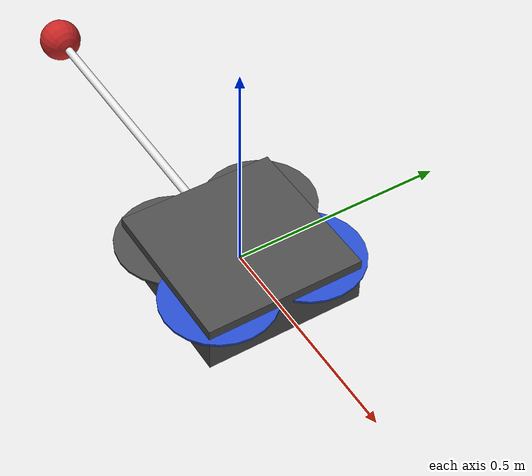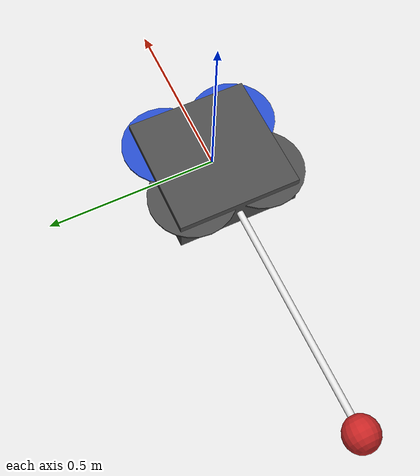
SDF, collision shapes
<?xml version='1.0'?>
<sdf version='1.6'>
  <enable_lockstep>false</enable_lockstep>
  <model name='px4vision_pendulum'>
  <static>false</static>
  <include>
    <uri>model://px4vision_ancl</uri>
  </include>

  <link name='pendulum'>
    <pose>-0.425 0 0 0 1.57 0</pose>
    <inertial>
      <mass>0.01</mass>
      <inertia>
        <ixx>0.00060208</ixx>
        <ixy>0</ixy>
        <ixz>0</ixz>
        <iyy>0.00060208</iyy>
        <iyz>0</iyz>
        <izz>0.000000005</izz>
      </inertia>
    </inertial>
    <collision name='pendulun_collision'>
      <geometry>
        <cylinder>
          <radius>0.01</radius>
          <length>0.85</length>
        </cylinder>
      </geometry>
      <surface>
        <contact>
          <ode/>
        </contact>
        <friction>
          <ode/>
        </friction>
      </surface>
    </collision>
    <visual name='pendulum_visual'>
      <geometry>
        <cylinder>
          <radius>0.001</radius>
          <length>0.85</length>
        </cylinder>
      </geometry>
      <material>
        <script>
          <name>Gazebo/White</name>
          <uri>file://media/materials/scripts/gazebo.material</uri>
        </script>
      </material>
    </visual>
    <gravity>1</gravity>

  </link>

  <link name='load'>
    <pose>-0.85 0 0 0 1.57 0</pose>
    <inertial>
      <mass>0.25</mass>
      <inertia>
        <ixx>0.00025</ixx>
        <ixy>0</ixy>
        <ixz>0</ixz>
        <iyy>0.00025</iyy>
        <iyz>0</iyz>
        <izz>0.00025</izz>
      </inertia>
    </inertial>
    <collision name='load_collision'>
      <geometry>
        <sphere>
          <radius>0.05 0.05 0.05</radius>
        </sphere>
      </geometry>
      <surface>
        <contact>
          <ode/>
        </contact>
        <friction>
          <ode/>
        </friction>
      </surface>
    </collision>
    <visual name='load_visual'>
      <geometry>
        <sphere>
          <radius>0.05 0.05 0.05</radius>
        </sphere>
      </geometry>
      <material>
        <script>
          <name>Gazebo/Red</name>
          <uri>file://media/materials/scripts/gazebo.material</uri>
        </script>
      </material>
    </visual>
    <gravity>1</gravity>
  </link>

  <joint name='load_joint' type='universal'>
    <pose>0 0 0.0 0 0 0</pose>
    <child>load</child>
    <parent>pendulum</parent>
    <axis>
      <xyz>0 0 1</xyz>
      <dynamics>
        <friction>10</friction>
      </dynamics>
    </axis>

    <axis2>
      <xyz>1 1 0</xyz>
      <dynamics>
        <friction>100</friction>
      </dynamics>
    </axis2>
  </joint>

  <joint name='pendulum_joint' type='universal'>
    <pose>0 0 0.425 0 0 0</pose>
    <child>pendulum</child>
    <parent>px4vision_ancl::base_link</parent>
  </joint>

  </model>
</sdf>

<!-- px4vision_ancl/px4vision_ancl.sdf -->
<sdf version='1.6'>
  <model name='px4vision_ancl'>
    <link name='base_link'>
      <pose>0 0 0 0 -0 0</pose>
      <inertial>
        <pose>0 0 0 0 -0 0</pose>
        <mass>1.5</mass>
        <inertia>
          <ixx>0.029125</ixx>
          <ixy>0</ixy>
          <ixz>0</ixz>
          <iyy>0.029125</iyy>
          <iyz>0</iyz>
          <izz>0.055225</izz>
        </inertia>
      </inertial>
      <collision name='base_link_inertia_collision'>
        <pose>0 0 0 0 -0 0</pose>
        <geometry>
          <box>
            <size>0.365 0.365 0.11</size>
          </box>
        </geometry>
        <surface>
          <contact>
            <ode>
              <min_depth>0.001</min_depth>
              <max_vel>0</max_vel>
            </ode>
          </contact>
          <friction>
            <ode/>
          </friction>
        </surface>
      </collision>
      <visual name='base_link_inertia_visual'>
        <pose>0 0 0 1.5707 0 -0.01</pose>
        <geometry>
          <mesh>
            <scale>0.001 0.001 0.001</scale>
            <uri>model://px4vision/meshes/body.dae</uri>
          </mesh>
        </geometry>
        <material>
          <script>
            <name>Gazebo/DarkGrey</name>
            <uri>file://media/materials/scripts/gazebo.material</uri>
          </script>
        </material>
      </visual>
      <gravity>1</gravity>
      <velocity_decay/>
    </link>
    <link name='/imu_link'>
      <pose>0 0 0 0 -0 0</pose>
      <inertial>
        <pose>0 0 0 0 -0 0</pose>
        <mass>0.015</mass>
        <inertia>
          <ixx>1e-05</ixx>
          <ixy>0</ixy>
          <ixz>0</ixz>
          <iyy>1e-05</iyy>
          <iyz>0</iyz>
          <izz>1e-05</izz>
        </inertia>
      </inertial>
    </link>
    <joint name='/imu_joint' type='revolute'>
      <child>/imu_link</child>
      <parent>base_link</parent>
      <axis>
        <xyz>1 0 0</xyz>
        <limit>
          <lower>0</lower>
          <upper>0</upper>
          <effort>0</effort>
          <velocity>0</velocity>
        </limit>
        <dynamics>
          <spring_reference>0</spring_reference>
          <spring_stiffness>0</spring_stiffness>
        </dynamics>
        <use_parent_model_frame>1</use_parent_model_frame>
      </axis>
    </joint>
    <link name='rotor_0'>
      <pose>0.0935 -0.107 0.03 0 -0 0</pose>
      <inertial>
        <pose>0 0 0 0 -0 0</pose>
        <mass>0.005</mass>
        <inertia>
          <ixx>9.75e-07</ixx>
          <ixy>0</ixy>
          <ixz>0</ixz>
          <iyy>0.000273104</iyy>
          <iyz>0</iyz>
          <izz>0.000274004</izz>
        </inertia>
      </inertial>
      <collision name='rotor_0_collision'>
        <pose>0 0 0 0 -0 0</pose>
        <geometry>
          <cylinder>
            <length>0.005</length>
            <radius>0.128</radius>
          </cylinder>
        </geometry>
        <surface>
          <contact>
            <ode/>
          </contact>
          <friction>
            <ode/>
          </friction>
        </surface>
      </collision>
      <visual name='rotor_0_visual'>
        <pose>0 0 0 0 -0 0</pose>
        <geometry>
          <mesh>
            <scale>0.6 0.6 0.6</scale>
            <uri>model://iris/meshes/iris_prop_ccw.dae</uri>
          </mesh>
        </geometry>
        <material>
          <script>
            <name>Gazebo/Blue</name>
            <uri>file://media/materials/scripts/gazebo.material</uri>
          </script>
        </material>
      </visual>
      <gravity>1</gravity>
      <velocity_decay/>
    </link>
    <joint name='rotor_0_joint' type='revolute'>
      <child>rotor_0</child>
      <parent>base_link</parent>
      <axis>
        <xyz>0 0 1</xyz>
        <limit>
          <lower>-1e+16</lower>
          <upper>1e+16</upper>
        </limit>
        <dynamics>
          <spring_reference>0</spring_reference>
          <spring_stiffness>0</spring_stiffness>
        </dynamics>
        <use_parent_model_frame>1</use_parent_model_frame>
      </axis>
    </joint>
    <link name='rotor_1'>
      <pose>-0.0935 0.107 0.03 0 -0 0</pose>
      <inertial>
        <pose>0 0 0 0 -0 0</pose>
        <mass>0.005</mass>
        <inertia>
          <ixx>9.75e-07</ixx>
          <ixy>0</ixy>
          <ixz>0</ixz>
          <iyy>0.000273104</iyy>
          <iyz>0</iyz>
          <izz>0.000274004</izz>
        </inertia>
      </inertial>
      <collision name='rotor_1_collision'>
        <pose>0 0 0 0 -0 0</pose>
        <geometry>
          <cylinder>
            <length>0.005</length>
            <radius>0.128</radius>
          </cylinder>
        </geometry>
        <surface>
          <contact>
            <ode/>
          </contact>
          <friction>
            <ode/>
          </friction>
        </surface>
      </collision>
      <visual name='rotor_1_visual'>
        <pose>0 0 0 0 -0 0</pose>
        <geometry>
          <mesh>
            <scale>0.6 0.6 0.6</scale>
            <uri>model://iris/meshes/iris_prop_ccw.dae</uri>
          </mesh>
        </geometry>
        <material>
          <script>
            <name>Gazebo/DarkGrey</name>
            <uri>file://media/materials/scripts/gazebo.material</uri>
          </script>
        </material>
      </visual>
      <gravity>1</gravity>
      <velocity_decay/>
    </link>
    <joint name='rotor_1_joint' type='revolute'>
      <child>rotor_1</child>
      <parent>base_link</parent>
      <axis>
        <xyz>0 0 1</xyz>
        <limit>
          <lower>-1e+16</lower>
          <upper>1e+16</upper>
        </limit>
        <dynamics>
          <spring_reference>0</spring_reference>
          <spring_stiffness>0</spring_stiffness>
        </dynamics>
        <use_parent_model_frame>1</use_parent_model_frame>
      </axis>
    </joint>
    <link name='rotor_2'>
      <pose>0.0935 0.107 0.03 0 -0 0</pose>
      <inertial>
        <pose>0 0 0 0 -0 0</pose>
        <mass>0.005</mass>
        <inertia>
          <ixx>9.75e-07</ixx>
          <ixy>0</ixy>
          <ixz>0</ixz>
          <iyy>0.000273104</iyy>
          <iyz>0</iyz>
          <izz>0.000274004</izz>
        </inertia>
      </inertial>
      <collision name='rotor_2_collision'>
        <pose>0 0 0 0 -0 0</pose>
        <geometry>
          <cylinder>
            <length>0.005</length>
            <radius>0.128</radius>
          </cylinder>
        </geometry>
        <surface>
          <contact>
            <ode/>
          </contact>
          <friction>
            <ode/>
          </friction>
        </surface>
      </collision>
      <visual name='rotor_2_visual'>
        <pose>0 0 0 0 -0 0</pose>
        <geometry>
          <mesh>
            <scale>0.6 0.6 0.6</scale>
            <uri>model://iris/meshes/iris_prop_cw.dae</uri>
          </mesh>
        </geometry>
        <material>
          <script>
            <name>Gazebo/Blue</name>
            <uri>file://media/materials/scripts/gazebo.material</uri>
          </script>
        </material>
      </visual>
      <gravity>1</gravity>
      <velocity_decay/>
    </link>
    <joint name='rotor_2_joint' type='revolute'>
      <child>rotor_2</child>
      <parent>base_link</parent>
      <axis>
        <xyz>0 0 1</xyz>
        <limit>
          <lower>-1e+16</lower>
          <upper>1e+16</upper>
        </limit>
        <dynamics>
          <spring_reference>0</spring_reference>
          <spring_stiffness>0</spring_stiffness>
        </dynamics>
        <use_parent_model_frame>1</use_parent_model_frame>
      </axis>
    </joint>
    <link name='rotor_3'>
      <pose>-0.0935 -0.107 0.03 0 -0 0</pose>
      <inertial>
        <pose>0 0 0 0 -0 0</pose>
        <mass>0.005</mass>
        <inertia>
          <ixx>9.75e-07</ixx>
          <ixy>0</ixy>
          <ixz>0</ixz>
          <iyy>0.000273104</iyy>
          <iyz>0</iyz>
          <izz>0.000274004</izz>
        </inertia>
      </inertial>
      <collision name='rotor_3_collision'>
        <pose>0 0 0 0 -0 0</pose>
        <geometry>
          <cylinder>
            <length>0.005</length>
            <radius>0.128</radius>
          </cylinder>
        </geometry>
        <surface>
          <contact>
            <ode/>
          </contact>
          <friction>
            <ode/>
          </friction>
        </surface>
      </collision>
      <visual name='rotor_3_visual'>
        <pose>0 0 0 0 -0 0</pose>
        <geometry>
          <mesh>
            <scale>0.6 0.6 0.6</scale>
            <uri>model://iris/meshes/iris_prop_cw.dae</uri>
          </mesh>
        </geometry>
        <material>
          <script>
            <name>Gazebo/DarkGrey</name>
            <uri>file://media/materials/scripts/gazebo.material</uri>
          </script>
        </material>
      </visual>
      <gravity>1</gravity>
      <velocity_decay/>
    </link>
    <joint name='rotor_3_joint' type='revolute'>
      <child>rotor_3</child>
      <parent>base_link</parent>
      <axis>
        <xyz>0 0 1</xyz>
        <limit>
          <lower>-1e+16</lower>
          <upper>1e+16</upper>
        </limit>
        <dynamics>
          <spring_reference>0</spring_reference>
          <spring_stiffness>0</spring_stiffness>
        </dynamics>
        <use_parent_model_frame>1</use_parent_model_frame>
      </axis>
    </joint>
    <include>
      <uri>model://gps_ancl</uri>
      <pose>0.0 0 0.0 0 0 0</pose>
      <name>gps</name>
    </include>
    <joint name='gps_joint' type='fixed'>
      <child>gps::link</child>
      <parent>base_link</parent>
    </joint>
    <plugin name='rosbag' filename='libgazebo_multirotor_base_plugin.so'>
      <robotNamespace/>
      <linkName>base_link</linkName>
      <rotorVelocitySlowdownSim>10</rotorVelocitySlowdownSim>
    </plugin>
    <plugin name='front_right_motor_model' filename='libgazebo_motor_model.so'>
      <robotNamespace/>
      <jointName>rotor_0_joint</jointName>
      <linkName>rotor_0</linkName>
      <turningDirection>ccw</turningDirection>
      <timeConstantUp>0.0125</timeConstantUp>
      <timeConstantDown>0.025</timeConstantDown>
      <maxRotVelocity>1100</maxRotVelocity>
      <motorConstant>8.54858e-06</motorConstant>
      <momentConstant>0.06</momentConstant>
      <commandSubTopic>/gazebo/command/motor_speed</commandSubTopic>
      <motorNumber>0</motorNumber>
      <rotorDragCoefficient>0.000806428</rotorDragCoefficient>
      <rollingMomentCoefficient>1e-06</rollingMomentCoefficient>
      <motorSpeedPubTopic>/motor_speed/0</motorSpeedPubTopic>
      <rotorVelocitySlowdownSim>10</rotorVelocitySlowdownSim>
    </plugin>
    <plugin name='back_left_motor_model' filename='libgazebo_motor_model.so'>
      <robotNamespace/>
      <jointName>rotor_1_joint</jointName>
      <linkName>rotor_1</linkName>
      <turningDirection>ccw</turningDirection>
      <timeConstantUp>0.0125</timeConstantUp>
      <timeConstantDown>0.025</timeConstantDown>
      <maxRotVelocity>1100</maxRotVelocity>
      <motorConstant>8.54858e-06</motorConstant>
      <momentConstant>0.06</momentConstant>
      <commandSubTopic>/gazebo/command/motor_speed</commandSubTopic>
      <motorNumber>1</motorNumber>
      <rotorDragCoefficient>0.000806428</rotorDragCoefficient>
      <rollingMomentCoefficient>1e-06</rollingMomentCoefficient>
      <motorSpeedPubTopic>/motor_speed/1</motorSpeedPubTopic>
      <rotorVelocitySlowdownSim>10</rotorVelocitySlowdownSim>
    </plugin>
    <plugin name='front_left_motor_model' filename='libgazebo_motor_model.so'>
      <robotNamespace/>
      <jointName>rotor_2_joint</jointName>
      <linkName>rotor_2</linkName>
      <turningDirection>cw</turningDirection>
      <timeConstantUp>0.0125</timeConstantUp>
      <timeConstantDown>0.025</timeConstantDown>
      <maxRotVelocity>1100</maxRotVelocity>
      <motorConstant>8.54858e-06</motorConstant>
      <momentConstant>0.06</momentConstant>
      <commandSubTopic>/gazebo/command/motor_speed</commandSubTopic>
      <motorNumber>2</motorNumber>
      <rotorDragCoefficient>0.000806428</rotorDragCoefficient>
      <rollingMomentCoefficient>1e-06</rollingMomentCoefficient>
      <motorSpeedPubTopic>/motor_speed/2</motorSpeedPubTopic>
      <rotorVelocitySlowdownSim>10</rotorVelocitySlowdownSim>
    </plugin>
    <plugin name='back_right_motor_model' filename='libgazebo_motor_model.so'>
      <robotNamespace/>
      <jointName>rotor_3_joint</jointName>
      <linkName>rotor_3</linkName>
      <turningDirection>cw</turningDirection>
      <timeConstantUp>0.0125</timeConstantUp>
      <timeConstantDown>0.025</timeConstantDown>
      <maxRotVelocity>1100</maxRotVelocity>
      <motorConstant>8.54858e-06</motorConstant>
      <momentConstant>0.06</momentConstant>
      <commandSubTopic>/gazebo/command/motor_speed</commandSubTopic>
      <motorNumber>3</motorNumber>
      <rotorDragCoefficient>0.000806428</rotorDragCoefficient>
      <rollingMomentCoefficient>1e-06</rollingMomentCoefficient>
      <motorSpeedPubTopic>/motor_speed/3</motorSpeedPubTopic>
      <rotorVelocitySlowdownSim>10</rotorVelocitySlowdownSim>
    </plugin>
    <plugin name='groundtruth_plugin' filename='libgazebo_groundtruth_plugin.so'>
      <robotNamespace/>
    </plugin>
    <plugin name='magnetometer_plugin' filename='libgazebo_magnetometer_plugin.so'>
      <robotNamespace/>
      <pubRate>20</pubRate>
      <noiseDensity>0.0004</noiseDensity>
      <randomWalk>6.4e-06</randomWalk>
      <biasCorrelationTime>600</biasCorrelationTime>
      <magTopic>/mag</magTopic>
    </plugin>
    <plugin name='barometer_plugin' filename='libgazebo_barometer_plugin.so'>
      <robotNamespace/>
      <pubRate>10</pubRate>
      <baroTopic>/baro</baroTopic>
    </plugin>
    <plugin name='mavlink_interface' filename='libgazebo_mavlink_interface.so'>
      <robotNamespace/>
      <imuSubTopic>/imu</imuSubTopic>
      <gpsSubTopic>/gps</gpsSubTopic>
      <magSubTopic>/mag</magSubTopic>
      <baroSubTopic>/baro</baroSubTopic>
      <mavlink_addr>INADDR_ANY</mavlink_addr>
      <mavlink_udp_port>14560</mavlink_udp_port>
      <mavlink_tcp_port>4560</mavlink_tcp_port>
      <serialEnabled>0</serialEnabled>
      <serialDevice>/dev/ttyACM0</serialDevice>
      <baudRate>921600</baudRate>
      <qgc_addr>INADDR_ANY</qgc_addr>
      <qgc_udp_port>14550</qgc_udp_port>
      <sdk_addr>INADDR_ANY</sdk_addr>
      <sdk_udp_port>14540</sdk_udp_port>
      <hil_mode>0</hil_mode>
      <hil_state_level>0</hil_state_level>
      <send_vision_estimation>1</send_vision_estimation>
      <send_odometry>0</send_odometry>
      <enable_lockstep>1</enable_lockstep>
      <use_tcp>1</use_tcp>
      <motorSpeedCommandPubTopic>/gazebo/command/motor_speed</motorSpeedCommandPubTopic>
      <control_channels>
        <channel name='rotor1'>
          <input_index>0</input_index>
          <input_offset>0</input_offset>
          <input_scaling>1000</input_scaling>
          <zero_position_disarmed>0</zero_position_disarmed>
          <zero_position_armed>100</zero_position_armed>
          <joint_control_type>velocity</joint_control_type>
        </channel>
        <channel name='rotor2'>
          <input_index>1</input_index>
          <input_offset>0</input_offset>
          <input_scaling>1000</input_scaling>
          <zero_position_disarmed>0</zero_position_disarmed>
          <zero_position_armed>100</zero_position_armed>
          <joint_control_type>velocity</joint_control_type>
        </channel>
        <channel name='rotor3'>
          <input_index>2</input_index>
          <input_offset>0</input_offset>
          <input_scaling>1000</input_scaling>
          <zero_position_disarmed>0</zero_position_disarmed>
          <zero_position_armed>100</zero_position_armed>
          <joint_control_type>velocity</joint_control_type>
        </channel>
        <channel name='rotor4'>
          <input_index>3</input_index>
          <input_offset>0</input_offset>
          <input_scaling>1000</input_scaling>
          <zero_position_disarmed>0</zero_position_disarmed>
          <zero_position_armed>100</zero_position_armed>
          <joint_control_type>velocity</joint_control_type>
        </channel>
        <channel name='rotor5'>
          <input_index>4</input_index>
          <input_offset>1</input_offset>
          <input_scaling>324.6</input_scaling>
          <zero_position_disarmed>0</zero_position_disarmed>
          <zero_position_armed>0</zero_position_armed>
          <joint_control_type>velocity</joint_control_type>
          <joint_control_pid>
            <p>0.1</p>
            <i>0</i>
            <d>0</d>
            <iMax>0.0</iMax>
            <iMin>0.0</iMin>
            <cmdMax>2</cmdMax>
            <cmdMin>-2</cmdMin>
          </joint_control_pid>
          <joint_name>zephyr_delta_wing::propeller_joint</joint_name>
        </channel>
        <channel name='rotor6'>
          <input_index>5</input_index>
          <input_offset>0</input_offset>
          <input_scaling>0.524</input_scaling>
          <zero_position_disarmed>0</zero_position_disarmed>
          <zero_position_armed>0</zero_position_armed>
          <joint_control_type>position</joint_control_type>
          <joint_name>zephyr_delta_wing::flap_left_joint</joint_name>
          <joint_control_pid>
            <p>10.0</p>
            <i>0</i>
            <d>0</d>
            <iMax>0</iMax>
            <iMin>0</iMin>
            <cmdMax>20</cmdMax>
            <cmdMin>-20</cmdMin>
          </joint_control_pid>
        </channel>
        <channel name='rotor7'>
          <input_index>6</input_index>
          <input_offset>0</input_offset>
          <input_scaling>0.524</input_scaling>
          <zero_position_disarmed>0</zero_position_disarmed>
          <zero_position_armed>0</zero_position_armed>
          <joint_control_type>position</joint_control_type>
          <joint_name>zephyr_delta_wing::flap_right_joint</joint_name>
          <joint_control_pid>
            <p>10.0</p>
            <i>0</i>
            <d>0</d>
            <iMax>0</iMax>
            <iMin>0</iMin>
            <cmdMax>20</cmdMax>
            <cmdMin>-20</cmdMin>
          </joint_control_pid>
        </channel>
        <channel name='rotor8'>
          <input_index>7</input_index>
          <input_offset>0</input_offset>
          <input_scaling>0.524</input_scaling>
          <zero_position_disarmed>0</zero_position_disarmed>
          <zero_position_armed>0</zero_position_armed>
          <joint_control_type>position</joint_control_type>
        </channel>
      </control_channels>
    </plugin>
    <static>0</static>
    <plugin name='rotors_gazebo_imu_plugin' filename='libgazebo_imu_plugin.so'>
      <robotNamespace/>
      <linkName>/imu_link</linkName>
      <imuTopic>/imu</imuTopic>
      <gyroscopeNoiseDensity>0.00018665</gyroscopeNoiseDensity>
      <gyroscopeRandomWalk>3.8785e-05</gyroscopeRandomWalk>
      <gyroscopeBiasCorrelationTime>1000.0</gyroscopeBiasCorrelationTime>
      <gyroscopeTurnOnBiasSigma>0.0087</gyroscopeTurnOnBiasSigma>
      <accelerometerNoiseDensity>0.00186</accelerometerNoiseDensity>
      <accelerometerRandomWalk>0.006</accelerometerRandomWalk>
      <accelerometerBiasCorrelationTime>300.0</accelerometerBiasCorrelationTime>
      <accelerometerTurnOnBiasSigma>0.196</accelerometerTurnOnBiasSigma>
    </plugin>
  </model>
</sdf>

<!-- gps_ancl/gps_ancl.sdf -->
<sdf version="1.6">
  <model name="gps_ancl">
    <link name="link">
      <pose>0 0 0 0 0 0</pose>
      <inertial>
        <pose>0 0 0 0 0 0</pose>
        <mass>0.015</mass>
        <inertia>
          <ixx>1e-05</ixx>
          <ixy>0</ixy>
          <ixz>0</ixz>
          <iyy>1e-05</iyy>
          <iyz>0</iyz>
          <izz>1e-05</izz>
        </inertia>
      </inertial>
      <visual name="visual">
        <geometry>
          <cylinder>
            <radius>0.01</radius>
            <length>0.002</length>
          </cylinder>
        </geometry>
        <material>
          <script>
            <name>Gazebo/Black</name>
          </script>
        </material>
      </visual>
      <sensor name="gps" type="gps">
        <pose>0 0 0 0 0 0</pose>
        <update_rate>5.0</update_rate>
        <always_on>true</always_on>
        <visualize>false</visualize>
        <!-- GpsSensor noise currently not used -->
        <plugin name="gps_plugin" filename="libgazebo_gps_plugin.so">
          <robotNamespace></robotNamespace>
          <gpsNoise>true</gpsNoise>
          <gpsXYRandomWalk>2.0</gpsXYRandomWalk>
          <gpsZRandomWalk>4.0</gpsZRandomWalk>
          <gpsXYNoiseDensity>2.0e-4</gpsXYNoiseDensity>
          <gpsZNoiseDensity>4.0e-4</gpsZNoiseDensity>
          <gpsVXYNoiseDensity>0.2</gpsVXYNoiseDensity>
          <gpsVZNoiseDensity>0.4</gpsVZNoiseDensity>
        </plugin>
      </sensor>
    </link>
  </model>
</sdf>
